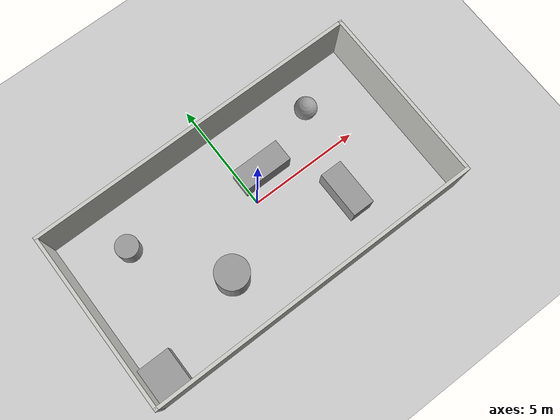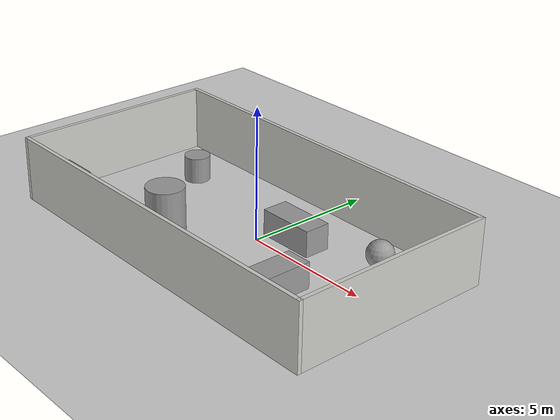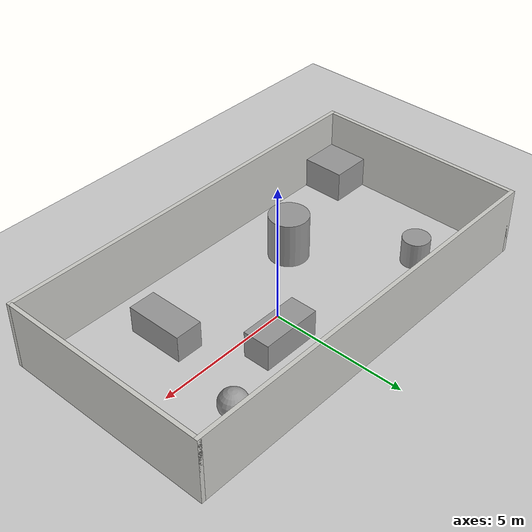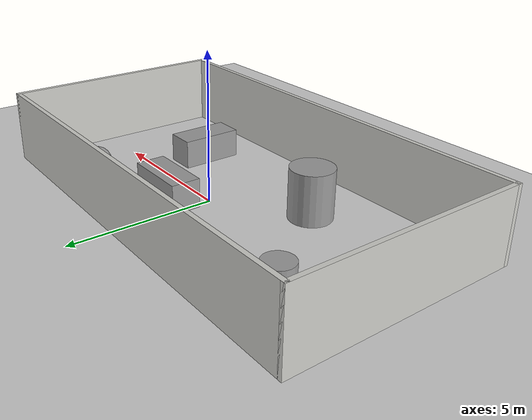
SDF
<sdf version="1.6">
 <world name="default">
  <light name="sun" type="directional">
   <pose>0 0 10 0 -0 0</pose>
   <diffuse>0.8 0.8 0.8 1</diffuse>
   <specular>0.2 0.2 0.2 1</specular>
   <attenuation>
    <range>1000</range>
    <constant>0.9</constant>
    <linear>0.01</linear>
    <quadratic>0.001</quadratic>
   </attenuation>
   <direction>-0.5 0.1 -0.9</direction>
  </light>
  <model name="ground_plane">
   <static>1</static>
   <link name="link">
    <collision name="collision">
     <geometry><plane><normal>0 0 1</normal><size>100 100</size></plane></geometry>
     <surface><friction><ode><mu>100</mu><mu2>50</mu2></ode></friction></surface>
    </collision>
    <visual name="visual">
     <cast_shadows>0</cast_shadows>
     <geometry><plane><normal>0 0 1</normal><size>100 100</size></plane></geometry>
     <material>
      <script><uri>file://media/materials/scripts/gazebo.material</uri><name>Gazebo/Grey</name></script>
     </material>
    </visual>
   </link>
  </model>
  <gravity>0 0 -9.8</gravity>
  <magnetic_field>6e-06 2.3e-05 -4.2e-05</magnetic_field>
  <atmosphere type="adiabatic"/>
  <physics name="default_physics" default="0" type="ode">
   <max_step_size>0.001</max_step_size>
   <real_time_factor>1</real_time_factor>
   <real_time_update_rate>1000</real_time_update_rate>
  </physics>
  <scene><ambient>0.4 0.4 0.4 1</ambient><background>0.7 0.7 0.7 1</background><shadows>1</shadows></scene>
  <audio><device>default</device></audio>
  <spherical_coordinates>
   <surface_model>EARTH_WGS84</surface_model>
   <latitude_deg>0</latitude_deg>
   <longitude_deg>0</longitude_deg>
   <elevation>0</elevation>
   <heading_deg>0</heading_deg>
  </spherical_coordinates>
  <model name="room_15x8">
   <pose>-0.4841 -0.423807 0 0 -0 0</pose>
   <link name="Wall_5">
    <collision name="Wall_5_Collision">
     <geometry><box><size>15 0.15 2.5</size></box></geometry>
     <pose>0 0 1.25 0 -0 0</pose>
    </collision>
    <visual name="Wall_5_Visual">
     <pose>0 0 1.25 0 -0 0</pose>
     <geometry><box><size>15 0.15 2.5</size></box></geometry>
     <material>
      <script><uri>file://media/materials/scripts/gazebo.material</uri><name>Gazebo/CeilingTiled</name></script>
      <ambient>0.996078 0.47451 0.0196078 1</ambient>
     </material>
     <meta><layer>0</layer></meta>
    </visual>
    <pose>0 3.925 0 0 -0 0</pose>
   </link>
   <link name="Wall_6">
    <collision name="Wall_6_Collision">
     <geometry><box><size>8 0.15 2.5</size></box></geometry>
     <pose>0 0 1.25 0 -0 0</pose>
    </collision>
    <visual name="Wall_6_Visual">
     <pose>0 0 1.25 0 -0 0</pose>
     <geometry><box><size>8 0.15 2.5</size></box></geometry>
     <material>
      <script><uri>file://media/materials/scripts/gazebo.material</uri><name>Gazebo/CeilingTiled</name></script>
      <ambient>0.996078 0.47451 0.0196078 1</ambient>
     </material>
     <meta><layer>0</layer></meta>
    </visual>
    <pose>7.425 0 0 0 -0 -1.5708</pose>
   </link>
   <link name="Wall_7">
    <collision name="Wall_7_Collision">
     <geometry><box><size>15 0.15 2.5</size></box></geometry>
     <pose>0 0 1.25 0 -0 0</pose>
    </collision>
    <visual name="Wall_7_Visual">
     <pose>0 0 1.25 0 -0 0</pose>
     <geometry><box><size>15 0.15 2.5</size></box></geometry>
     <material>
      <script><uri>file://media/materials/scripts/gazebo.material</uri><name>Gazebo/CeilingTiled</name></script>
      <ambient>0.996078 0.47451 0.0196078 1</ambient>
     </material>
     <meta><layer>0</layer></meta>
    </visual>
    <pose>0 -3.925 0 0 -0 3.14159</pose>
   </link>
   <link name="Wall_8">
    <collision name="Wall_8_Collision">
     <geometry><box><size>8 0.15 2.5</size></box></geometry>
     <pose>0 0 1.25 0 -0 0</pose>
    </collision>
    <visual name="Wall_8_Visual">
     <pose>0 0 1.25 0 -0 0</pose>
     <geometry><box><size>8 0.15 2.5</size></box></geometry>
     <material>
      <script><uri>file://media/materials/scripts/gazebo.material</uri><name>Gazebo/CeilingTiled</name></script>
      <ambient>0.996078 0.47451 0.0196078 1</ambient>
     </material>
     <meta><layer>0</layer></meta>
    </visual>
    <pose>-7.425 0 0 0 -0 1.5708</pose>
   </link>
   <static>1</static>
  </model>
  <model name="unit_box">
   <pose>-7.1074 -3.48593 0.575408 0 0 -2.7e-05</pose>
   <link name="link">
    <inertial>
     <mass>1</mass>
     <inertia>
      <ixx>0.166667</ixx>
      <ixy>0</ixy>
      <ixz>0</ixz>
      <iyy>0.166667</iyy>
      <iyz>0</iyz>
      <izz>0.166667</izz>
     </inertia>
    </inertial>
    <collision name="collision"><geometry><box><size>1.45329 1.57567 1.15082</size></box></geometry></collision>
    <visual name="visual">
     <geometry><box><size>1.45329 1.57567 1.15082</size></box></geometry>
     <material>
      <script><name>Gazebo/Grey</name><uri>file://media/materials/scripts/gazebo.material</uri></script>
     </material>
    </visual>
   </link>
  </model>
  <model name="unit_box_0">
   <pose>3.13345 -1.91936 0.499976 2.2e-05 -0 0</pose>
   <link name="link">
    <inertial>
     <mass>1</mass>
     <inertia>
      <ixx>0.166667</ixx>
      <ixy>0</ixy>
      <ixz>0</ixz>
      <iyy>0.166667</iyy>
      <iyz>0</iyz>
      <izz>0.166667</izz>
     </inertia>
    </inertial>
    <collision name="collision"><geometry><box><size>1 2.14184 1</size></box></geometry></collision>
    <visual name="visual">
     <geometry><box><size>1 2.14184 1</size></box></geometry>
     <material>
      <script><name>Gazebo/Grey</name><uri>file://media/materials/scripts/gazebo.material</uri></script>
     </material>
    </visual>
   </link>
  </model>
  <model name="unit_box_1">
   <pose>0.960442 0.971327 0.499999 2e-06 -0 1e-06</pose>
   <link name="link">
    <inertial>
     <mass>1</mass>
     <inertia>
      <ixx>0.166667</ixx>
      <ixy>0</ixy>
      <ixz>0</ixz>
      <iyy>0.166667</iyy>
      <iyz>0</iyz>
      <izz>0.166667</izz>
     </inertia>
    </inertial>
    <collision name="collision"><geometry><box><size>2.22189 1 1</size></box></geometry></collision>
    <visual name="visual">
     <geometry><box><size>2.22189 1 1</size></box></geometry>
     <material>
      <script><name>Gazebo/Grey</name><uri>file://media/materials/scripts/gazebo.material</uri></script>
     </material>
    </visual>
   </link>
  </model>
  <model name="unit_cylinder">
   <pose>-2.71545 -1.93471 0.851184 1e-06 1e-06 1.7e-05</pose>
   <link name="link">
    <inertial>
     <mass>1</mass>
     <inertia><ixx>0.145833</ixx><ixy>0</ixy><ixz>0</ixz><iyy>0.145833</iyy><iyz>0</iyz><izz>0.125</izz></inertia>
    </inertial>
    <collision name="collision">
     <geometry><cylinder><radius>0.726925</radius><length>1.70237</length></cylinder></geometry>
    </collision>
    <visual name="visual">
     <geometry><cylinder><radius>0.726925</radius><length>1.70237</length></cylinder></geometry>
     <material>
      <script><name>Gazebo/Grey</name><uri>file://media/materials/scripts/gazebo.material</uri></script>
     </material>
    </visual>
   </link>
  </model>
  <model name="unit_cylinder_0">
   <pose>-5.37639 1.54684 0.499994 -4e-06 -3e-06 -0</pose>
   <link name="link">
    <inertial>
     <mass>1</mass>
     <inertia><ixx>0.145833</ixx><ixy>0</ixy><ixz>0</ixz><iyy>0.145833</iyy><iyz>0</iyz><izz>0.125</izz></inertia>
    </inertial>
    <collision name="collision">
     <geometry><cylinder><radius>0.5</radius><length>1</length></cylinder></geometry>
    </collision>
    <visual name="visual">
     <geometry><cylinder><radius>0.5</radius><length>1</length></cylinder></geometry>
     <material>
      <script><name>Gazebo/Grey</name><uri>file://media/materials/scripts/gazebo.material</uri></script>
     </material>
    </visual>
   </link>
  </model>
  <model name="unit_sphere">
   <pose>4.0945 1.96385 0.5 0 -0 0</pose>
   <link name="link">
    <inertial>
     <mass>1</mass>
     <inertia><ixx>0.1</ixx><ixy>0</ixy><ixz>0</ixz><iyy>0.1</iyy><iyz>0</iyz><izz>0.1</izz></inertia>
    </inertial>
    <collision name="collision"><geometry><sphere><radius>0.5</radius></sphere></geometry></collision>
    <visual name="visual">
     <geometry><sphere><radius>0.5</radius></sphere></geometry>
     <material>
      <script><name>Gazebo/Grey</name><uri>file://media/materials/scripts/gazebo.material</uri></script>
     </material>
    </visual>
   </link>
  </model>
  <light name="user_point_light_0" type="point">
   <pose>-0.988261 -0.034456 1 0 -0 0</pose>
   <diffuse>0.5 0.5 0.5 1</diffuse>
   <specular>0.1 0.1 0.1 1</specular>
   <attenuation>
    <range>20</range>
    <constant>0.5</constant>
    <linear>0.01</linear>
    <quadratic>0.001</quadratic>
   </attenuation>
   <cast_shadows>0</cast_shadows>
   <direction>0 0 -1</direction>
  </light>
 </world>
</sdf>
